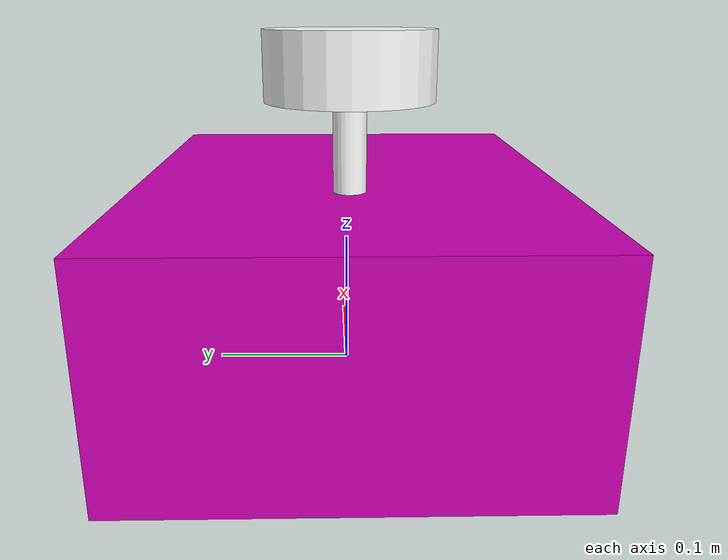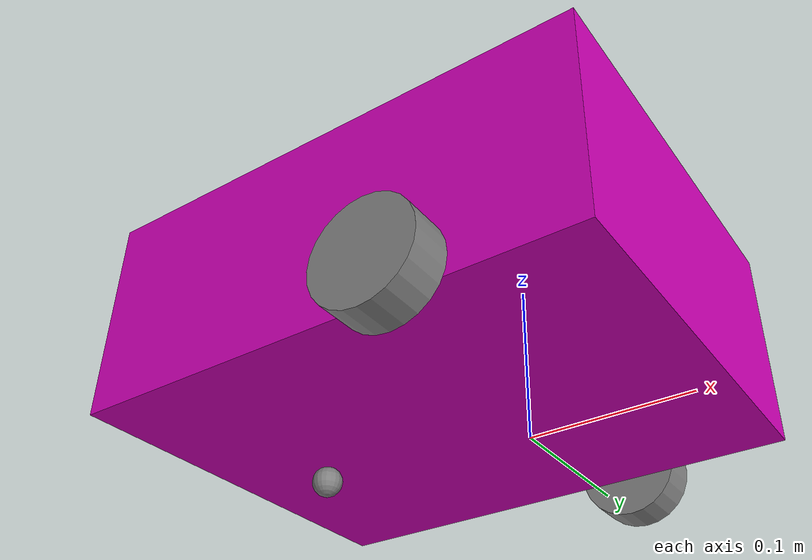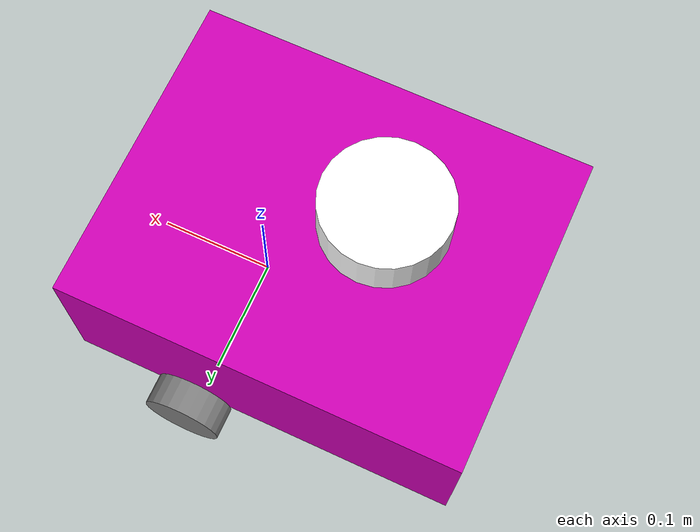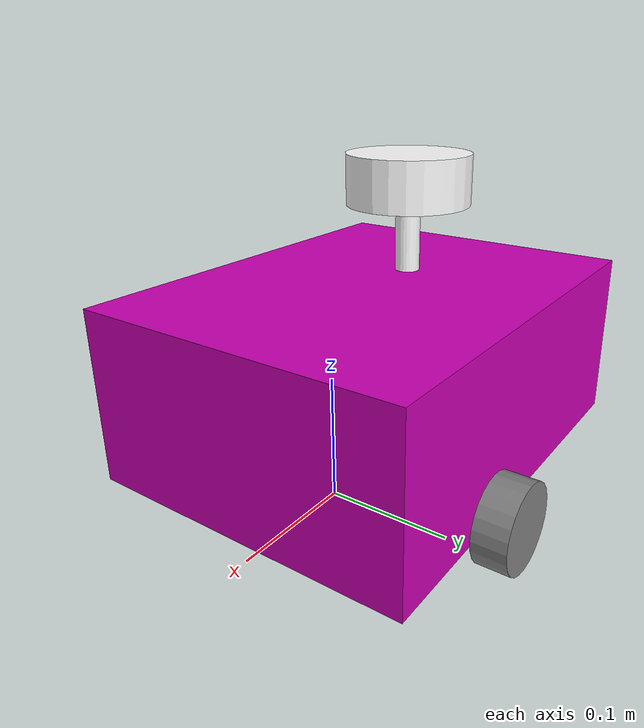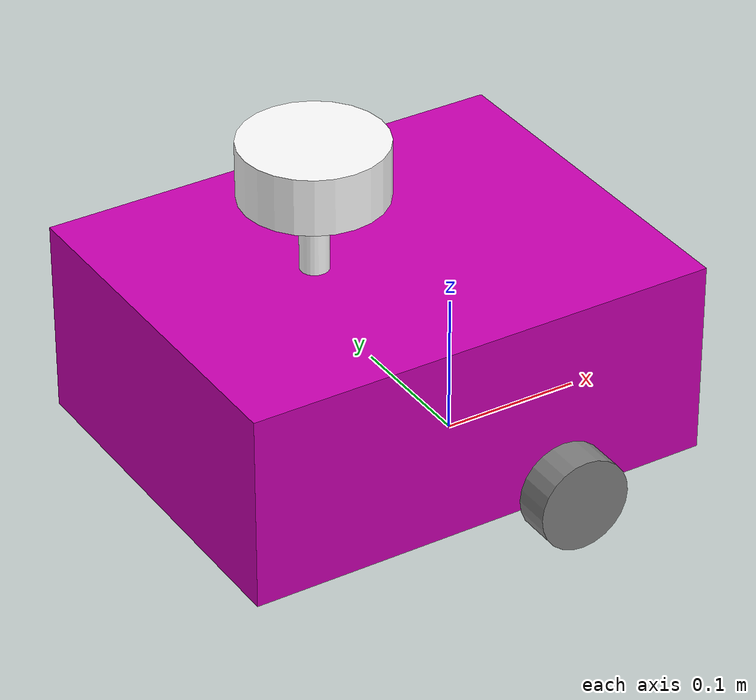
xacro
<?xml version="1.0"?>
<robot name="test_robot" xmlns:xacro="http://www.ros.org/wiki/xacro">

    <xacro:include filename="test_robot_core2.xacro" />
    <xacro:include filename="gazebo_control.xacro" />
    <xacro:include filename="lidar.xacro" />
</robot>

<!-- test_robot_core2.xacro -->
<robot xmlns:xacro="http://www.ros.org/wiki/xacro">

    <xacro:include filename="inertial_macros.xacro"/>

    <xacro:property name="chassis_length" value="0.335"/>
    <xacro:property name="chassis_width" value="0.265"/>
    <xacro:property name="chassis_height" value="0.138"/>
    <xacro:property name="chassis_mass" value="1.0"/>
    <xacro:property name="wheel_radius" value="0.033"/>
    <xacro:property name="wheel_thickness" value="0.026"/>
    <xacro:property name="wheel_mass" value="0.05"/>
    <xacro:property name="wheel_offset_x" value="0.226"/>
    <xacro:property name="wheel_offset_y" value="0.1485"/>
    <xacro:property name="wheel_offset_z" value="0.01"/>
    <xacro:property name="caster_wheel_radius" value="0.01"/>
    <xacro:property name="caster_wheel_mass" value="0.01"/>
    <xacro:property name="caster_wheel_offset_x" value="0.075"/>
    <xacro:property name="caster_wheel_offset_z" value="${wheel_offset_z - wheel_radius + caster_wheel_radius}"/>

#Define colours
    <material name="grey">
        <color rgba="0.5 0.5 0.5 1" />
    </material>

    <material name="purple">
        <color rgba="0.8 0 0.7 1" />
    </material>

    <material name="white">
        <color rgba ="1 1 1 1" />
    </material>

    <!-- BASE LINK -->

    <link name="base_link">

    </link>

    <!-- BASE_FOOTPRINT LINK -->

    <joint name="base_footprint_joint" type="fixed">
        <parent link="base_link"/>
        <child link="base_footprint"/>
        <origin xyz="0 0 0" rpy="0 0 0"/>
    </joint>

    <link name="base_footprint">
    </link>

    <!-- CHASSIS LINK -->

    <joint name="chassis_joint" type="fixed">
        <parent link="base_link"/>
        <child link="chassis"/>
        <origin xyz="${-wheel_offset_x} 0 ${-wheel_offset_z + wheel_radius}"/>
    </joint>

    <link name="chassis">
        <visual>
            <origin xyz="${chassis_length/2} 0 ${chassis_height/2}"/>
            <geometry>
                <box size="${chassis_length} ${chassis_width} ${chassis_height}"/>
            </geometry>
            <material name="purple"/>
        </visual>
        <collision>
            <origin xyz="${chassis_length/2} 0 ${chassis_height/2}"/>
            <geometry>
                <box size="${chassis_length} ${chassis_width} ${chassis_height}"/>
            </geometry>
        </collision>
        <xacro:inertial_box mass="0.5" x="${chassis_length}" y="${chassis_width}" z="${chassis_height}">
            <origin xyz="${chassis_length/2} 0 ${chassis_height/2}" rpy="0 0 0"/>
        </xacro:inertial_box>
    </link>

    <!-- LEFT WHEEL LINK -->

    <joint name="left_wheel_joint" type="continuous">
        <parent link="base_link"/>
        <child link="left_wheel"/>
        <origin xyz="0 ${wheel_offset_y} ${wheel_radius}" rpy="-${pi/2} 0 0" />
        <axis xyz="0 0 1"/>
    </joint>

    <link name="left_wheel">
        <visual>
            <geometry>
                <cylinder radius="${wheel_radius}" length="${wheel_thickness}"/>
            </geometry>
            <material name="grey"/>
        </visual>
        <collision>
            <geometry>
                <sphere radius="${wheel_radius}"/>
            </geometry>
        </collision>
        <xacro:inertial_cylinder mass="${wheel_mass}" length="${wheel_thickness}" radius="${wheel_radius}">
            <origin xyz="0 0 0" rpy="0 0 0"/>
        </xacro:inertial_cylinder>
    </link>

    <!-- RIGHT WHEEL LINK -->

    <joint name="right_wheel_joint" type="continuous">
        <parent link="base_link"/>
        <child link="right_wheel"/>
        <origin xyz="0 ${-wheel_offset_y} ${wheel_radius}" rpy="${pi/2} 0 0" />
        <axis xyz="0 0 -1"/>
    </joint>

    <link name="right_wheel">
        <visual>
            <geometry>
                <cylinder radius="${wheel_radius}" length="${wheel_thickness}"/>
            </geometry>
            <material name="grey"/>
        </visual>
        <collision>
            <geometry>
                <sphere radius="${wheel_radius}"/>
            </geometry>
        </collision>
        <xacro:inertial_cylinder mass="${wheel_mass}" length="${wheel_thickness}" radius="${wheel_radius}">
            <origin xyz="0 0 0" rpy="0 0 0"/>
        </xacro:inertial_cylinder>
    </link>

    <gazebo reference="right_wheel">
        <material>Gazebo/Blue</material>
    </gazebo>

    <!-- CASTER WHEEL LINK -->

    <joint name="caster_wheel_joint" type="fixed">
        <parent link="chassis"/>
        <child link="caster_wheel"/>
        <origin xyz="${caster_wheel_offset_x} 0 ${caster_wheel_offset_z}"/>
    </joint>

    <link name="caster_wheel">
        <visual>
            <geometry>
                <sphere radius="${caster_wheel_radius}"/>
            </geometry>
            <material name="grey"/>
        </visual>
        <collision>
            <geometry>
                <sphere radius="${caster_wheel_radius}"/>
            </geometry>
        </collision>
        <xacro:inertial_sphere mass="${caster_wheel_mass}" radius="${caster_wheel_radius}">
            <origin xyz="0 0 0" rpy="0 0 0"/>
        </xacro:inertial_sphere>
    </link>

    <gazebo reference="caster_wheel">
        <mu1 value="0.001"/>
        <mu2 value="0.001"/>
    </gazebo>

    <!-- LIDAR LINK -->

    <joint name="lidar_joint" type="fixed">
        <parent link="chassis"/>
        <child link="lidar_link"/>
        <origin xyz="0.122 0 0.212" rpy="0 0 0"/>
    </joint>

    <link name="lidar_link">
        <visual>
            <geometry>
                <cylinder radius="0.05" length="0.04"/>
            </geometry>
            <material name="white"/>
        </visual>
        <visual>
            <origin xyz="0 0 -0.05"/>
            <geometry>
                <cylinder radius="0.01" length="0.1"/>
            </geometry>
            <material name="white"/>
        </visual>
        <collision>
            <geometry>
                <cylinder radius="0.05" length="0.04"/>
            </geometry>
        </collision>
        <xacro:inertial_cylinder mass="0.1" length="0.04" radius="0.05">
            <origin xyz="0 0 0" rpy="0 0 0"/>
        </xacro:inertial_cylinder>
    </link>
</robot>
